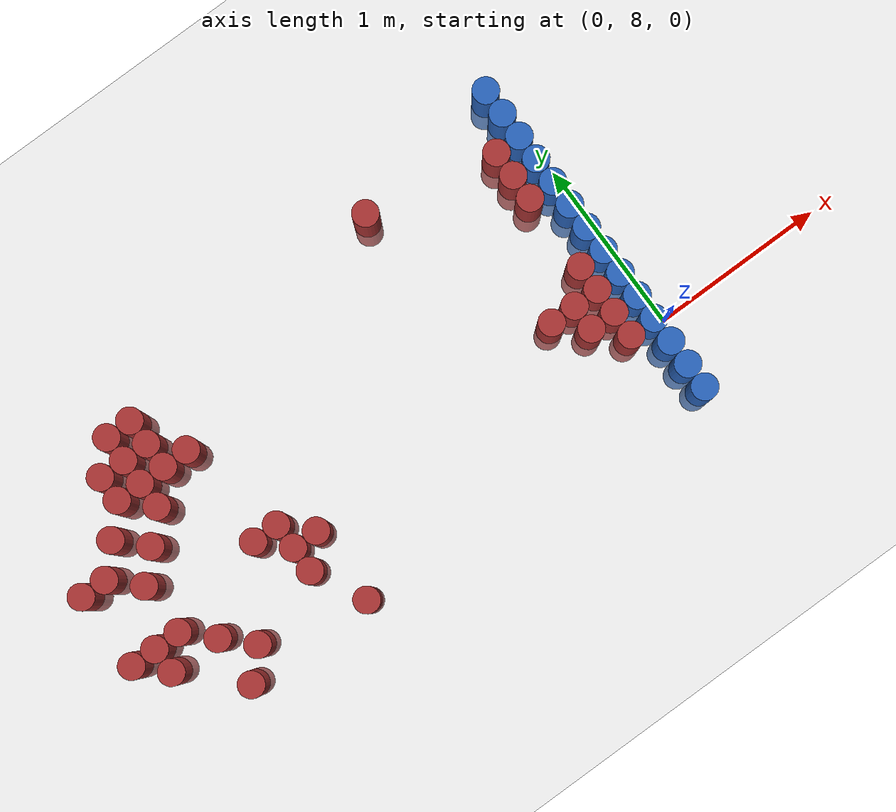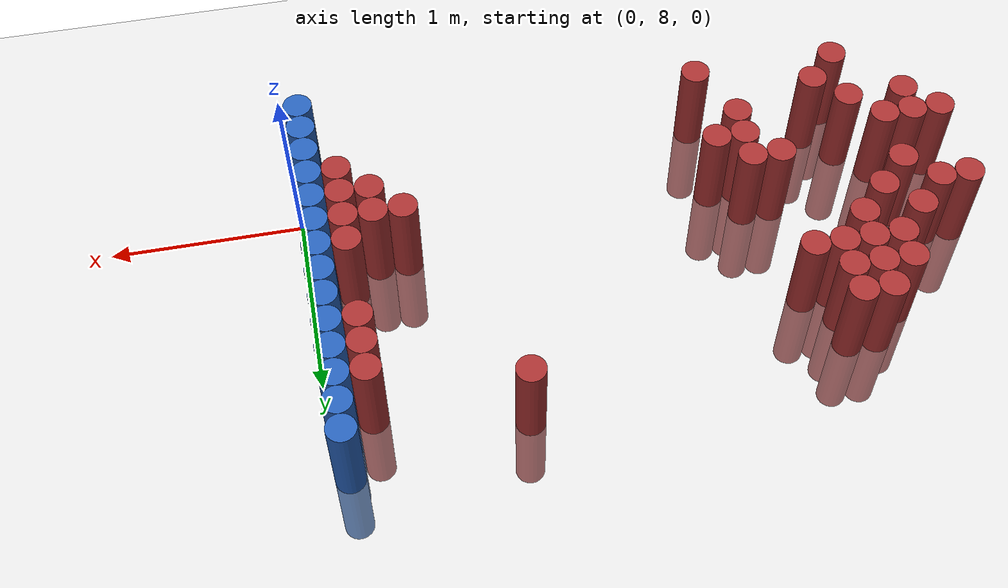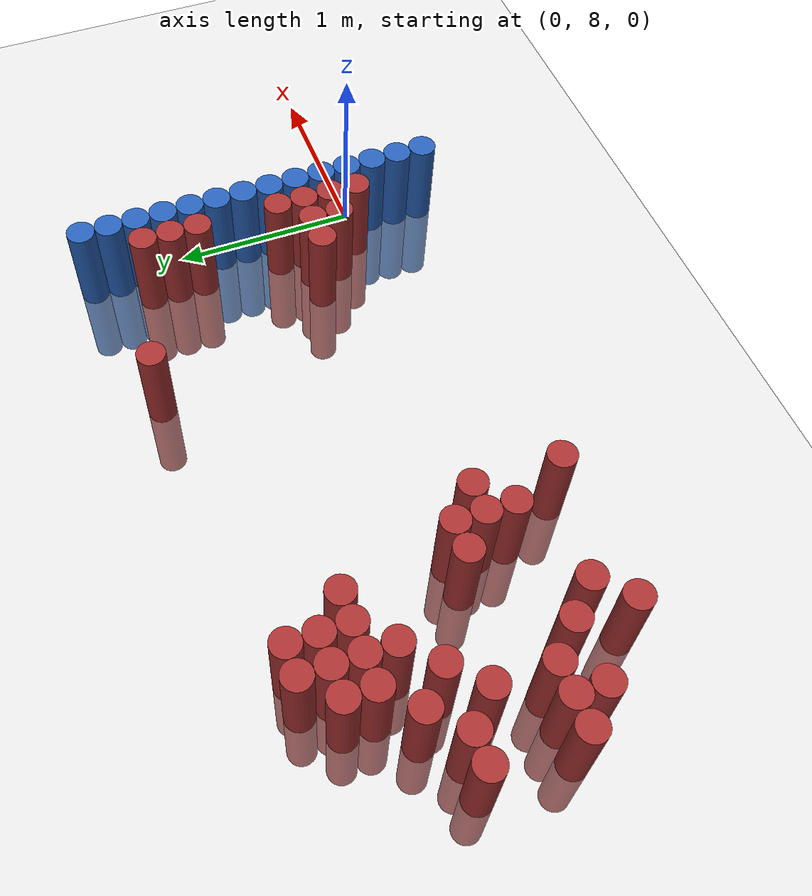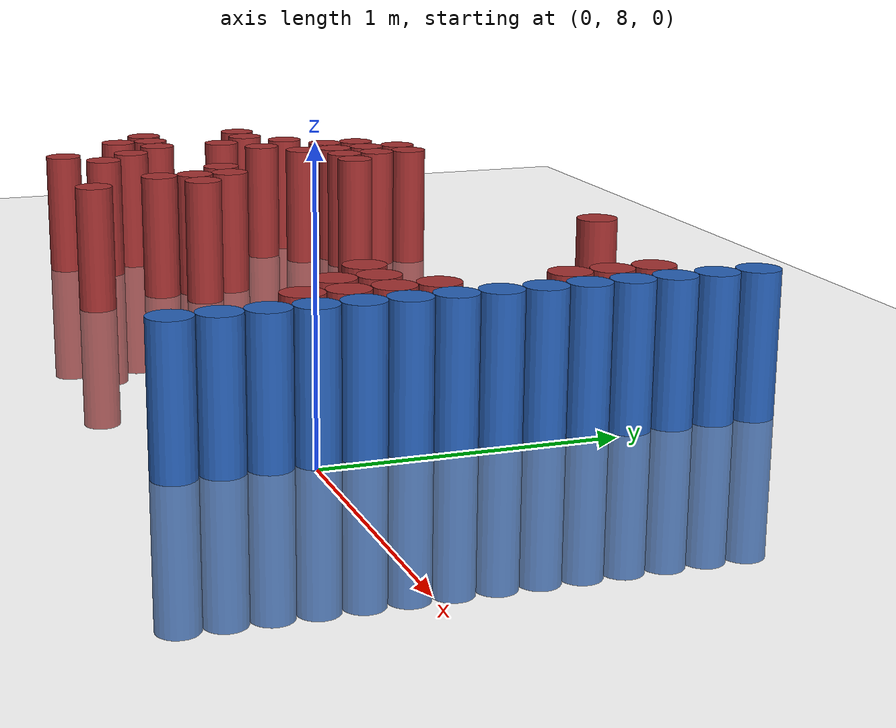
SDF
<sdf version="1.6">
 <world name="default">
  <model name="ground_plane">
   <static>1</static>
   <link name="link">
    <collision name="collision">
     <geometry><plane><normal>0 0 1</normal><size>100 100</size></plane></geometry>
     <surface><friction><ode><mu>100</mu><mu2>50</mu2></ode></friction></surface>
    </collision>
    <visual name="visual">
     <cast_shadows>0</cast_shadows>
     <geometry><plane><normal>0 0 1</normal><size>100 100</size></plane></geometry>
     <material>
      <script><uri>file://media/materials/scripts/gazebo.material</uri><name>Gazebo/Grey</name></script>
     </material>
    </visual>
   </link>
  </model>
  <model name="unit_cylinder_154">
   <static>1</static>
   <pose>-3.375000 8.175000 0.000000 0.000000 0.000000 0.000000</pose>
   <link name="link">
    <inertial>
     <mass>1</mass>
     <inertia><ixx>0.145833</ixx><ixy>0</ixy><ixz>0</ixz><iyy>0.145833</iyy><iyz>0</iyz><izz>0.125</izz></inertia>
    </inertial>
    <collision name="collision">
     <geometry><cylinder><radius>0.075000</radius><length>1</length></cylinder></geometry>
    </collision>
    <visual name="visual">
     <geometry><cylinder><radius>0.075000</radius><length>1</length></cylinder></geometry>
     <material>
      <ambient>0.648000 0.192000 0.192000 1</ambient>
      <diffuse>0.648000 0.192000 0.192000 1</diffuse>
     </material>
     <material>
      <script><name>Gazebo/Grey</name><uri>file://media/materials/scripts/gazebo.material</uri></script>
     </material>
    </visual>
   </link>
  </model>
  <model name="unit_cylinder_155">
   <static>1</static>
   <pose>-3.375000 8.625000 0.000000 0.000000 0.000000 0.000000</pose>
   <link name="link">
    <inertial>
     <mass>1</mass>
     <inertia><ixx>0.145833</ixx><ixy>0</ixy><ixz>0</ixz><iyy>0.145833</iyy><iyz>0</iyz><izz>0.125</izz></inertia>
    </inertial>
    <collision name="collision">
     <geometry><cylinder><radius>0.075000</radius><length>1</length></cylinder></geometry>
    </collision>
    <visual name="visual">
     <geometry><cylinder><radius>0.075000</radius><length>1</length></cylinder></geometry>
     <material>
      <ambient>0.648000 0.192000 0.192000 1</ambient>
      <diffuse>0.648000 0.192000 0.192000 1</diffuse>
     </material>
     <material>
      <script><name>Gazebo/Grey</name><uri>file://media/materials/scripts/gazebo.material</uri></script>
     </material>
    </visual>
   </link>
  </model>
  <model name="unit_cylinder_158">
   <static>1</static>
   <pose>-3.225000 8.025000 0.000000 0.000000 0.000000 0.000000</pose>
   <link name="link">
    <inertial>
     <mass>1</mass>
     <inertia><ixx>0.145833</ixx><ixy>0</ixy><ixz>0</ixz><iyy>0.145833</iyy><iyz>0</iyz><izz>0.125</izz></inertia>
    </inertial>
    <collision name="collision">
     <geometry><cylinder><radius>0.075000</radius><length>1</length></cylinder></geometry>
    </collision>
    <visual name="visual">
     <geometry><cylinder><radius>0.075000</radius><length>1</length></cylinder></geometry>
     <material>
      <ambient>0.648000 0.192000 0.192000 1</ambient>
      <diffuse>0.648000 0.192000 0.192000 1</diffuse>
     </material>
     <material>
      <script><name>Gazebo/Grey</name><uri>file://media/materials/scripts/gazebo.material</uri></script>
     </material>
    </visual>
   </link>
  </model>
  <model name="unit_cylinder_159">
   <static>1</static>
   <pose>-3.225000 8.175000 0.000000 0.000000 0.000000 0.000000</pose>
   <link name="link">
    <inertial>
     <mass>1</mass>
     <inertia><ixx>0.145833</ixx><ixy>0</ixy><ixz>0</ixz><iyy>0.145833</iyy><iyz>0</iyz><izz>0.125</izz></inertia>
    </inertial>
    <collision name="collision">
     <geometry><cylinder><radius>0.075000</radius><length>1</length></cylinder></geometry>
    </collision>
    <visual name="visual">
     <geometry><cylinder><radius>0.075000</radius><length>1</length></cylinder></geometry>
     <material>
      <ambient>0.648000 0.192000 0.192000 1</ambient>
      <diffuse>0.648000 0.192000 0.192000 1</diffuse>
     </material>
     <material>
      <script><name>Gazebo/Grey</name><uri>file://media/materials/scripts/gazebo.material</uri></script>
     </material>
    </visual>
   </link>
  </model>
  <model name="unit_cylinder_160">
   <static>1</static>
   <pose>-3.225000 8.625000 0.000000 0.000000 0.000000 0.000000</pose>
   <link name="link">
    <inertial>
     <mass>1</mass>
     <inertia><ixx>0.145833</ixx><ixy>0</ixy><ixz>0</ixz><iyy>0.145833</iyy><iyz>0</iyz><izz>0.125</izz></inertia>
    </inertial>
    <collision name="collision">
     <geometry><cylinder><radius>0.075000</radius><length>1</length></cylinder></geometry>
    </collision>
    <visual name="visual">
     <geometry><cylinder><radius>0.075000</radius><length>1</length></cylinder></geometry>
     <material>
      <ambient>0.648000 0.192000 0.192000 1</ambient>
      <diffuse>0.648000 0.192000 0.192000 1</diffuse>
     </material>
     <material>
      <script><name>Gazebo/Grey</name><uri>file://media/materials/scripts/gazebo.material</uri></script>
     </material>
    </visual>
   </link>
  </model>
  <model name="unit_cylinder_163">
   <static>1</static>
   <pose>-3.075000 8.175000 0.000000 0.000000 0.000000 0.000000</pose>
   <link name="link">
    <inertial>
     <mass>1</mass>
     <inertia><ixx>0.145833</ixx><ixy>0</ixy><ixz>0</ixz><iyy>0.145833</iyy><iyz>0</iyz><izz>0.125</izz></inertia>
    </inertial>
    <collision name="collision">
     <geometry><cylinder><radius>0.075000</radius><length>1</length></cylinder></geometry>
    </collision>
    <visual name="visual">
     <geometry><cylinder><radius>0.075000</radius><length>1</length></cylinder></geometry>
     <material>
      <ambient>0.648000 0.192000 0.192000 1</ambient>
      <diffuse>0.648000 0.192000 0.192000 1</diffuse>
     </material>
     <material>
      <script><name>Gazebo/Grey</name><uri>file://media/materials/scripts/gazebo.material</uri></script>
     </material>
    </visual>
   </link>
  </model>
  <model name="unit_cylinder_164">
   <static>1</static>
   <pose>-3.075000 8.475000 0.000000 0.000000 0.000000 0.000000</pose>
   <link name="link">
    <inertial>
     <mass>1</mass>
     <inertia><ixx>0.145833</ixx><ixy>0</ixy><ixz>0</ixz><iyy>0.145833</iyy><iyz>0</iyz><izz>0.125</izz></inertia>
    </inertial>
    <collision name="collision">
     <geometry><cylinder><radius>0.075000</radius><length>1</length></cylinder></geometry>
    </collision>
    <visual name="visual">
     <geometry><cylinder><radius>0.075000</radius><length>1</length></cylinder></geometry>
     <material>
      <ambient>0.648000 0.192000 0.192000 1</ambient>
      <diffuse>0.648000 0.192000 0.192000 1</diffuse>
     </material>
     <material>
      <script><name>Gazebo/Grey</name><uri>file://media/materials/scripts/gazebo.material</uri></script>
     </material>
    </visual>
   </link>
  </model>
  <model name="unit_cylinder_165">
   <static>1</static>
   <pose>-3.075000 8.775000 0.000000 0.000000 0.000000 0.000000</pose>
   <link name="link">
    <inertial>
     <mass>1</mass>
     <inertia><ixx>0.145833</ixx><ixy>0</ixy><ixz>0</ixz><iyy>0.145833</iyy><iyz>0</iyz><izz>0.125</izz></inertia>
    </inertial>
    <collision name="collision">
     <geometry><cylinder><radius>0.075000</radius><length>1</length></cylinder></geometry>
    </collision>
    <visual name="visual">
     <geometry><cylinder><radius>0.075000</radius><length>1</length></cylinder></geometry>
     <material>
      <ambient>0.648000 0.192000 0.192000 1</ambient>
      <diffuse>0.648000 0.192000 0.192000 1</diffuse>
     </material>
     <material>
      <script><name>Gazebo/Grey</name><uri>file://media/materials/scripts/gazebo.material</uri></script>
     </material>
    </visual>
   </link>
  </model>
  <model name="unit_cylinder_166">
   <static>1</static>
   <pose>-2.925000 7.725000 0.000000 0.000000 0.000000 0.000000</pose>
   <link name="link">
    <inertial>
     <mass>1</mass>
     <inertia><ixx>0.145833</ixx><ixy>0</ixy><ixz>0</ixz><iyy>0.145833</iyy><iyz>0</iyz><izz>0.125</izz></inertia>
    </inertial>
    <collision name="collision">
     <geometry><cylinder><radius>0.075000</radius><length>1</length></cylinder></geometry>
    </collision>
    <visual name="visual">
     <geometry><cylinder><radius>0.075000</radius><length>1</length></cylinder></geometry>
     <material>
      <ambient>0.648000 0.192000 0.192000 1</ambient>
      <diffuse>0.648000 0.192000 0.192000 1</diffuse>
     </material>
     <material>
      <script><name>Gazebo/Grey</name><uri>file://media/materials/scripts/gazebo.material</uri></script>
     </material>
    </visual>
   </link>
  </model>
  <model name="unit_cylinder_167">
   <static>1</static>
   <pose>-2.925000 8.025000 0.000000 0.000000 0.000000 0.000000</pose>
   <link name="link">
    <inertial>
     <mass>1</mass>
     <inertia><ixx>0.145833</ixx><ixy>0</ixy><ixz>0</ixz><iyy>0.145833</iyy><iyz>0</iyz><izz>0.125</izz></inertia>
    </inertial>
    <collision name="collision">
     <geometry><cylinder><radius>0.075000</radius><length>1</length></cylinder></geometry>
    </collision>
    <visual name="visual">
     <geometry><cylinder><radius>0.075000</radius><length>1</length></cylinder></geometry>
     <material>
      <ambient>0.648000 0.192000 0.192000 1</ambient>
      <diffuse>0.648000 0.192000 0.192000 1</diffuse>
     </material>
     <material>
      <script><name>Gazebo/Grey</name><uri>file://media/materials/scripts/gazebo.material</uri></script>
     </material>
    </visual>
   </link>
  </model>
  <model name="unit_cylinder_168">
   <static>1</static>
   <pose>-2.925000 8.625000 0.000000 0.000000 0.000000 0.000000</pose>
   <link name="link">
    <inertial>
     <mass>1</mass>
     <inertia><ixx>0.145833</ixx><ixy>0</ixy><ixz>0</ixz><iyy>0.145833</iyy><iyz>0</iyz><izz>0.125</izz></inertia>
    </inertial>
    <collision name="collision">
     <geometry><cylinder><radius>0.075000</radius><length>1</length></cylinder></geometry>
    </collision>
    <visual name="visual">
     <geometry><cylinder><radius>0.075000</radius><length>1</length></cylinder></geometry>
     <material>
      <ambient>0.648000 0.192000 0.192000 1</ambient>
      <diffuse>0.648000 0.192000 0.192000 1</diffuse>
     </material>
     <material>
      <script><name>Gazebo/Grey</name><uri>file://media/materials/scripts/gazebo.material</uri></script>
     </material>
    </visual>
   </link>
  </model>
  <model name="unit_cylinder_169">
   <static>1</static>
   <pose>-2.925000 8.925000 0.000000 0.000000 0.000000 0.000000</pose>
   <link name="link">
    <inertial>
     <mass>1</mass>
     <inertia><ixx>0.145833</ixx><ixy>0</ixy><ixz>0</ixz><iyy>0.145833</iyy><iyz>0</iyz><izz>0.125</izz></inertia>
    </inertial>
    <collision name="collision">
     <geometry><cylinder><radius>0.075000</radius><length>1</length></cylinder></geometry>
    </collision>
    <visual name="visual">
     <geometry><cylinder><radius>0.075000</radius><length>1</length></cylinder></geometry>
     <material>
      <ambient>0.648000 0.192000 0.192000 1</ambient>
      <diffuse>0.648000 0.192000 0.192000 1</diffuse>
     </material>
     <material>
      <script><name>Gazebo/Grey</name><uri>file://media/materials/scripts/gazebo.material</uri></script>
     </material>
    </visual>
   </link>
  </model>
  <model name="unit_cylinder_170">
   <static>1</static>
   <pose>-2.925000 9.075000 0.000000 0.000000 0.000000 0.000000</pose>
   <link name="link">
    <inertial>
     <mass>1</mass>
     <inertia><ixx>0.145833</ixx><ixy>0</ixy><ixz>0</ixz><iyy>0.145833</iyy><iyz>0</iyz><izz>0.125</izz></inertia>
    </inertial>
    <collision name="collision">
     <geometry><cylinder><radius>0.075000</radius><length>1</length></cylinder></geometry>
    </collision>
    <visual name="visual">
     <geometry><cylinder><radius>0.075000</radius><length>1</length></cylinder></geometry>
     <material>
      <ambient>0.648000 0.192000 0.192000 1</ambient>
      <diffuse>0.648000 0.192000 0.192000 1</diffuse>
     </material>
     <material>
      <script><name>Gazebo/Grey</name><uri>file://media/materials/scripts/gazebo.material</uri></script>
     </material>
    </visual>
   </link>
  </model>
  <model name="unit_cylinder_171">
   <static>1</static>
   <pose>-2.775000 7.875000 0.000000 0.000000 0.000000 0.000000</pose>
   <link name="link">
    <inertial>
     <mass>1</mass>
     <inertia><ixx>0.145833</ixx><ixy>0</ixy><ixz>0</ixz><iyy>0.145833</iyy><iyz>0</iyz><izz>0.125</izz></inertia>
    </inertial>
    <collision name="collision">
     <geometry><cylinder><radius>0.075000</radius><length>1</length></cylinder></geometry>
    </collision>
    <visual name="visual">
     <geometry><cylinder><radius>0.075000</radius><length>1</length></cylinder></geometry>
     <material>
      <ambient>0.648000 0.192000 0.192000 1</ambient>
      <diffuse>0.648000 0.192000 0.192000 1</diffuse>
     </material>
     <material>
      <script><name>Gazebo/Grey</name><uri>file://media/materials/scripts/gazebo.material</uri></script>
     </material>
    </visual>
   </link>
  </model>
  <model name="unit_cylinder_172">
   <static>1</static>
   <pose>-2.775000 8.775000 0.000000 0.000000 0.000000 0.000000</pose>
   <link name="link">
    <inertial>
     <mass>1</mass>
     <inertia><ixx>0.145833</ixx><ixy>0</ixy><ixz>0</ixz><iyy>0.145833</iyy><iyz>0</iyz><izz>0.125</izz></inertia>
    </inertial>
    <collision name="collision">
     <geometry><cylinder><radius>0.075000</radius><length>1</length></cylinder></geometry>
    </collision>
    <visual name="visual">
     <geometry><cylinder><radius>0.075000</radius><length>1</length></cylinder></geometry>
     <material>
      <ambient>0.648000 0.192000 0.192000 1</ambient>
      <diffuse>0.648000 0.192000 0.192000 1</diffuse>
     </material>
     <material>
      <script><name>Gazebo/Grey</name><uri>file://media/materials/scripts/gazebo.material</uri></script>
     </material>
    </visual>
   </link>
  </model>
  <model name="unit_cylinder_173">
   <static>1</static>
   <pose>-2.775000 8.925000 0.000000 0.000000 0.000000 0.000000</pose>
   <link name="link">
    <inertial>
     <mass>1</mass>
     <inertia><ixx>0.145833</ixx><ixy>0</ixy><ixz>0</ixz><iyy>0.145833</iyy><iyz>0</iyz><izz>0.125</izz></inertia>
    </inertial>
    <collision name="collision">
     <geometry><cylinder><radius>0.075000</radius><length>1</length></cylinder></geometry>
    </collision>
    <visual name="visual">
     <geometry><cylinder><radius>0.075000</radius><length>1</length></cylinder></geometry>
     <material>
      <ambient>0.648000 0.192000 0.192000 1</ambient>
      <diffuse>0.648000 0.192000 0.192000 1</diffuse>
     </material>
     <material>
      <script><name>Gazebo/Grey</name><uri>file://media/materials/scripts/gazebo.material</uri></script>
     </material>
    </visual>
   </link>
  </model>
  <model name="unit_cylinder_174">
   <static>1</static>
   <pose>-2.775000 9.075000 0.000000 0.000000 0.000000 0.000000</pose>
   <link name="link">
    <inertial>
     <mass>1</mass>
     <inertia><ixx>0.145833</ixx><ixy>0</ixy><ixz>0</ixz><iyy>0.145833</iyy><iyz>0</iyz><izz>0.125</izz></inertia>
    </inertial>
    <collision name="collision">
     <geometry><cylinder><radius>0.075000</radius><length>1</length></cylinder></geometry>
    </collision>
    <visual name="visual">
     <geometry><cylinder><radius>0.075000</radius><length>1</length></cylinder></geometry>
     <material>
      <ambient>0.648000 0.192000 0.192000 1</ambient>
      <diffuse>0.648000 0.192000 0.192000 1</diffuse>
     </material>
     <material>
      <script><name>Gazebo/Grey</name><uri>file://media/materials/scripts/gazebo.material</uri></script>
     </material>
    </visual>
   </link>
  </model>
  <model name="unit_cylinder_175">
   <static>1</static>
   <pose>-2.775000 9.225000 0.000000 0.000000 0.000000 0.000000</pose>
   <link name="link">
    <inertial>
     <mass>1</mass>
     <inertia><ixx>0.145833</ixx><ixy>0</ixy><ixz>0</ixz><iyy>0.145833</iyy><iyz>0</iyz><izz>0.125</izz></inertia>
    </inertial>
    <collision name="collision">
     <geometry><cylinder><radius>0.075000</radius><length>1</length></cylinder></geometry>
    </collision>
    <visual name="visual">
     <geometry><cylinder><radius>0.075000</radius><length>1</length></cylinder></geometry>
     <material>
      <ambient>0.648000 0.192000 0.192000 1</ambient>
      <diffuse>0.648000 0.192000 0.192000 1</diffuse>
     </material>
     <material>
      <script><name>Gazebo/Grey</name><uri>file://media/materials/scripts/gazebo.material</uri></script>
     </material>
    </visual>
   </link>
  </model>
  <model name="unit_cylinder_178">
   <static>1</static>
   <pose>-2.625000 8.925000 0.000000 0.000000 0.000000 0.000000</pose>
   <link name="link">
    <inertial>
     <mass>1</mass>
     <inertia><ixx>0.145833</ixx><ixy>0</ixy><ixz>0</ixz><iyy>0.145833</iyy><iyz>0</iyz><izz>0.125</izz></inertia>
    </inertial>
    <collision name="collision">
     <geometry><cylinder><radius>0.075000</radius><length>1</length></cylinder></geometry>
    </collision>
    <visual name="visual">
     <geometry><cylinder><radius>0.075000</radius><length>1</length></cylinder></geometry>
     <material>
      <ambient>0.648000 0.192000 0.192000 1</ambient>
      <diffuse>0.648000 0.192000 0.192000 1</diffuse>
     </material>
     <material>
      <script><name>Gazebo/Grey</name><uri>file://media/materials/scripts/gazebo.material</uri></script>
     </material>
    </visual>
   </link>
  </model>
  <model name="unit_cylinder_179">
   <static>1</static>
   <pose>-2.625000 9.075000 0.000000 0.000000 0.000000 0.000000</pose>
   <link name="link">
    <inertial>
     <mass>1</mass>
     <inertia><ixx>0.145833</ixx><ixy>0</ixy><ixz>0</ixz><iyy>0.145833</iyy><iyz>0</iyz><izz>0.125</izz></inertia>
    </inertial>
    <collision name="collision">
     <geometry><cylinder><radius>0.075000</radius><length>1</length></cylinder></geometry>
    </collision>
    <visual name="visual">
     <geometry><cylinder><radius>0.075000</radius><length>1</length></cylinder></geometry>
     <material>
      <ambient>0.648000 0.192000 0.192000 1</ambient>
      <diffuse>0.648000 0.192000 0.192000 1</diffuse>
     </material>
     <material>
      <script><name>Gazebo/Grey</name><uri>file://media/materials/scripts/gazebo.material</uri></script>
     </material>
    </visual>
   </link>
  </model>
  <model name="unit_cylinder_180">
   <static>1</static>
   <pose>-2.625000 9.225000 0.000000 0.000000 0.000000 0.000000</pose>
   <link name="link">
    <inertial>
     <mass>1</mass>
     <inertia><ixx>0.145833</ixx><ixy>0</ixy><ixz>0</ixz><iyy>0.145833</iyy><iyz>0</iyz><izz>0.125</izz></inertia>
    </inertial>
    <collision name="collision">
     <geometry><cylinder><radius>0.075000</radius><length>1</length></cylinder></geometry>
    </collision>
    <visual name="visual">
     <geometry><cylinder><radius>0.075000</radius><length>1</length></cylinder></geometry>
     <material>
      <ambient>0.648000 0.192000 0.192000 1</ambient>
      <diffuse>0.648000 0.192000 0.192000 1</diffuse>
     </material>
     <material>
      <script><name>Gazebo/Grey</name><uri>file://media/materials/scripts/gazebo.material</uri></script>
     </material>
    </visual>
   </link>
  </model>
  <model name="unit_cylinder_184">
   <static>1</static>
   <pose>-2.475000 8.325000 0.000000 0.000000 0.000000 0.000000</pose>
   <link name="link">
    <inertial>
     <mass>1</mass>
     <inertia><ixx>0.145833</ixx><ixy>0</ixy><ixz>0</ixz><iyy>0.145833</iyy><iyz>0</iyz><izz>0.125</izz></inertia>
    </inertial>
    <collision name="collision">
     <geometry><cylinder><radius>0.075000</radius><length>1</length></cylinder></geometry>
    </collision>
    <visual name="visual">
     <geometry><cylinder><radius>0.075000</radius><length>1</length></cylinder></geometry>
     <material>
      <ambient>0.648000 0.192000 0.192000 1</ambient>
      <diffuse>0.648000 0.192000 0.192000 1</diffuse>
     </material>
     <material>
      <script><name>Gazebo/Grey</name><uri>file://media/materials/scripts/gazebo.material</uri></script>
     </material>
    </visual>
   </link>
  </model>
  <model name="unit_cylinder_185">
   <static>1</static>
   <pose>-2.475000 8.925000 0.000000 0.000000 0.000000 0.000000</pose>
   <link name="link">
    <inertial>
     <mass>1</mass>
     <inertia><ixx>0.145833</ixx><ixy>0</ixy><ixz>0</ixz><iyy>0.145833</iyy><iyz>0</iyz><izz>0.125</izz></inertia>
    </inertial>
    <collision name="collision">
     <geometry><cylinder><radius>0.075000</radius><length>1</length></cylinder></geometry>
    </collision>
    <visual name="visual">
     <geometry><cylinder><radius>0.075000</radius><length>1</length></cylinder></geometry>
     <material>
      <ambient>0.648000 0.192000 0.192000 1</ambient>
      <diffuse>0.648000 0.192000 0.192000 1</diffuse>
     </material>
     <material>
      <script><name>Gazebo/Grey</name><uri>file://media/materials/scripts/gazebo.material</uri></script>
     </material>
    </visual>
   </link>
  </model>
  <model name="unit_cylinder_191">
   <static>1</static>
   <pose>-2.325000 8.025000 0.000000 0.000000 0.000000 0.000000</pose>
   <link name="link">
    <inertial>
     <mass>1</mass>
     <inertia><ixx>0.145833</ixx><ixy>0</ixy><ixz>0</ixz><iyy>0.145833</iyy><iyz>0</iyz><izz>0.125</izz></inertia>
    </inertial>
    <collision name="collision">
     <geometry><cylinder><radius>0.075000</radius><length>1</length></cylinder></geometry>
    </collision>
    <visual name="visual">
     <geometry><cylinder><radius>0.075000</radius><length>1</length></cylinder></geometry>
     <material>
      <ambient>0.648000 0.192000 0.192000 1</ambient>
      <diffuse>0.648000 0.192000 0.192000 1</diffuse>
     </material>
     <material>
      <script><name>Gazebo/Grey</name><uri>file://media/materials/scripts/gazebo.material</uri></script>
     </material>
    </visual>
   </link>
  </model>
  <model name="unit_cylinder_192">
   <static>1</static>
   <pose>-2.325000 8.175000 0.000000 0.000000 0.000000 0.000000</pose>
   <link name="link">
    <inertial>
     <mass>1</mass>
     <inertia><ixx>0.145833</ixx><ixy>0</ixy><ixz>0</ixz><iyy>0.145833</iyy><iyz>0</iyz><izz>0.125</izz></inertia>
    </inertial>
    <collision name="collision">
     <geometry><cylinder><radius>0.075000</radius><length>1</length></cylinder></geometry>
    </collision>
    <visual name="visual">
     <geometry><cylinder><radius>0.075000</radius><length>1</length></cylinder></geometry>
     <material>
      <ambient>0.648000 0.192000 0.192000 1</ambient>
      <diffuse>0.648000 0.192000 0.192000 1</diffuse>
     </material>
     <material>
      <script><name>Gazebo/Grey</name><uri>file://media/materials/scripts/gazebo.material</uri></script>
     </material>
    </visual>
   </link>
  </model>
  <model name="unit_cylinder_193">
   <static>1</static>
   <pose>-2.325000 8.325000 0.000000 0.000000 0.000000 0.000000</pose>
   <link name="link">
    <inertial>
     <mass>1</mass>
     <inertia><ixx>0.145833</ixx><ixy>0</ixy><ixz>0</ixz><iyy>0.145833</iyy><iyz>0</iyz><izz>0.125</izz></inertia>
    </inertial>
    <collision name="collision">
     <geometry><cylinder><radius>0.075000</radius><length>1</length></cylinder></geometry>
    </collision>
    <visual name="visual">
     <geometry><cylinder><radius>0.075000</radius><length>1</length></cylinder></geometry>
     <material>
      <ambient>0.648000 0.192000 0.192000 1</ambient>
      <diffuse>0.648000 0.192000 0.192000 1</diffuse>
     </material>
     <material>
      <script><name>Gazebo/Grey</name><uri>file://media/materials/scripts/gazebo.material</uri></script>
     </material>
    </visual>
   </link>
  </model>
  <model name="unit_cylinder_196">
   <static>1</static>
   <pose>-2.175000 7.725000 0.000000 0.000000 0.000000 0.000000</pose>
   <link name="link">
    <inertial>
     <mass>1</mass>
     <inertia><ixx>0.145833</ixx><ixy>0</ixy><ixz>0</ixz><iyy>0.145833</iyy><iyz>0</iyz><izz>0.125</izz></inertia>
    </inertial>
    <collision name="collision">
     <geometry><cylinder><radius>0.075000</radius><length>1</length></cylinder></geometry>
    </collision>
    <visual name="visual">
     <geometry><cylinder><radius>0.075000</radius><length>1</length></cylinder></geometry>
     <material>
      <ambient>0.648000 0.192000 0.192000 1</ambient>
      <diffuse>0.648000 0.192000 0.192000 1</diffuse>
     </material>
     <material>
      <script><name>Gazebo/Grey</name><uri>file://media/materials/scripts/gazebo.material</uri></script>
     </material>
    </visual>
   </link>
  </model>
  <model name="unit_cylinder_197">
   <static>1</static>
   <pose>-2.175000 8.175000 0.000000 0.000000 0.000000 0.000000</pose>
   <link name="link">
    <inertial>
     <mass>1</mass>
     <inertia><ixx>0.145833</ixx><ixy>0</ixy><ixz>0</ixz><iyy>0.145833</iyy><iyz>0</iyz><izz>0.125</izz></inertia>
    </inertial>
    <collision name="collision">
     <geometry><cylinder><radius>0.075000</radius><length>1</length></cylinder></geometry>
    </collision>
    <visual name="visual">
     <geometry><cylinder><radius>0.075000</radius><length>1</length></cylinder></geometry>
     <material>
      <ambient>0.648000 0.192000 0.192000 1</ambient>
      <diffuse>0.648000 0.192000 0.192000 1</diffuse>
     </material>
     <material>
      <script><name>Gazebo/Grey</name><uri>file://media/materials/scripts/gazebo.material</uri></script>
     </material>
    </visual>
   </link>
  </model>
  <model name="unit_cylinder_208">
   <static>1</static>
   <pose>-0.975000 9.375000 0.000000 0.000000 0.000000 0.000000</pose>
   <link name="link">
    <inertial>
     <mass>1</mass>
     <inertia><ixx>0.145833</ixx><ixy>0</ixy><ixz>0</ixz><iyy>0.145833</iyy><iyz>0</iyz><izz>0.125</izz></inertia>
    </inertial>
    <collision name="collision">
     <geometry><cylinder><radius>0.075000</radius><length>1</length></cylinder></geometry>
    </collision>
    <visual name="visual">
     <geometry><cylinder><radius>0.075000</radius><length>1</length></cylinder></geometry>
     <material>
      <ambient>0.648000 0.192000 0.192000 1</ambient>
      <diffuse>0.648000 0.192000 0.192000 1</diffuse>
     </material>
     <material>
      <script><name>Gazebo/Grey</name><uri>file://media/materials/scripts/gazebo.material</uri></script>
     </material>
    </visual>
   </link>
  </model>
  <model name="unit_cylinder_216">
   <static>1</static>
   <pose>-0.525000 8.325000 0.000000 0.000000 0.000000 0.000000</pose>
   <link name="link">
    <inertial>
     <mass>1</mass>
     <inertia><ixx>0.145833</ixx><ixy>0</ixy><ixz>0</ixz><iyy>0.145833</iyy><iyz>0</iyz><izz>0.125</izz></inertia>
    </inertial>
    <collision name="collision">
     <geometry><cylinder><radius>0.075000</radius><length>1</length></cylinder></geometry>
    </collision>
    <visual name="visual">
     <geometry><cylinder><radius>0.075000</radius><length>1</length></cylinder></geometry>
     <material>
      <ambient>0.648000 0.192000 0.192000 1</ambient>
      <diffuse>0.648000 0.192000 0.192000 1</diffuse>
     </material>
     <material>
      <script><name>Gazebo/Grey</name><uri>file://media/materials/scripts/gazebo.material</uri></script>
     </material>
    </visual>
   </link>
  </model>
  <model name="unit_cylinder_219">
   <static>1</static>
   <pose>-0.375000 8.175000 0.000000 0.000000 0.000000 0.000000</pose>
   <link name="link">
    <inertial>
     <mass>1</mass>
     <inertia><ixx>0.145833</ixx><ixy>0</ixy><ixz>0</ixz><iyy>0.145833</iyy><iyz>0</iyz><izz>0.125</izz></inertia>
    </inertial>
    <collision name="collision">
     <geometry><cylinder><radius>0.075000</radius><length>1</length></cylinder></geometry>
    </collision>
    <visual name="visual">
     <geometry><cylinder><radius>0.075000</radius><length>1</length></cylinder></geometry>
     <material>
      <ambient>0.648000 0.192000 0.192000 1</ambient>
      <diffuse>0.648000 0.192000 0.192000 1</diffuse>
     </material>
     <material>
      <script><name>Gazebo/Grey</name><uri>file://media/materials/scripts/gazebo.material</uri></script>
     </material>
    </visual>
   </link>
  </model>
  <model name="unit_cylinder_220">
   <static>1</static>
   <pose>-0.375000 8.325000 0.000000 0.000000 0.000000 0.000000</pose>
   <link name="link">
    <inertial>
     <mass>1</mass>
     <inertia><ixx>0.145833</ixx><ixy>0</ixy><ixz>0</ixz><iyy>0.145833</iyy><iyz>0</iyz><izz>0.125</izz></inertia>
    </inertial>
    <collision name="collision">
     <geometry><cylinder><radius>0.075000</radius><length>1</length></cylinder></geometry>
    </collision>
    <visual name="visual">
     <geometry><cylinder><radius>0.075000</radius><length>1</length></cylinder></geometry>
     <material>
      <ambient>0.648000 0.192000 0.192000 1</ambient>
      <diffuse>0.648000 0.192000 0.192000 1</diffuse>
     </material>
     <material>
      <script><name>Gazebo/Grey</name><uri>file://media/materials/scripts/gazebo.material</uri></script>
     </material>
    </visual>
   </link>
  </model>
  <model name="unit_cylinder_229">
   <static>1</static>
   <pose>-0.225000 8.025000 0.000000 0.000000 0.000000 0.000000</pose>
   <link name="link">
    <inertial>
     <mass>1</mass>
     <inertia><ixx>0.145833</ixx><ixy>0</ixy><ixz>0</ixz><iyy>0.145833</iyy><iyz>0</iyz><izz>0.125</izz></inertia>
    </inertial>
    <collision name="collision">
     <geometry><cylinder><radius>0.075000</radius><length>1</length></cylinder></geometry>
    </collision>
    <visual name="visual">
     <geometry><cylinder><radius>0.075000</radius><length>1</length></cylinder></geometry>
     <material>
      <ambient>0.648000 0.192000 0.192000 1</ambient>
      <diffuse>0.648000 0.192000 0.192000 1</diffuse>
     </material>
     <material>
      <script><name>Gazebo/Grey</name><uri>file://media/materials/scripts/gazebo.material</uri></script>
     </material>
    </visual>
   </link>
  </model>
  <model name="unit_cylinder_230">
   <static>1</static>
   <pose>-0.225000 8.175000 0.000000 0.000000 0.000000 0.000000</pose>
   <link name="link">
    <inertial>
     <mass>1</mass>
     <inertia><ixx>0.145833</ixx><ixy>0</ixy><ixz>0</ixz><iyy>0.145833</iyy><iyz>0</iyz><izz>0.125</izz></inertia>
    </inertial>
    <collision name="collision">
     <geometry><cylinder><radius>0.075000</radius><length>1</length></cylinder></geometry>
    </collision>
    <visual name="visual">
     <geometry><cylinder><radius>0.075000</radius><length>1</length></cylinder></geometry>
     <material>
      <ambient>0.648000 0.192000 0.192000 1</ambient>
      <diffuse>0.648000 0.192000 0.192000 1</diffuse>
     </material>
     <material>
      <script><name>Gazebo/Grey</name><uri>file://media/materials/scripts/gazebo.material</uri></script>
     </material>
    </visual>
   </link>
  </model>
  <model name="unit_cylinder_231">
   <static>1</static>
   <pose>-0.225000 8.325000 0.000000 0.000000 0.000000 0.000000</pose>
   <link name="link">
    <inertial>
     <mass>1</mass>
     <inertia><ixx>0.145833</ixx><ixy>0</ixy><ixz>0</ixz><iyy>0.145833</iyy><iyz>0</iyz><izz>0.125</izz></inertia>
    </inertial>
    <collision name="collision">
     <geometry><cylinder><radius>0.075000</radius><length>1</length></cylinder></geometry>
    </collision>
    <visual name="visual">
     <geometry><cylinder><radius>0.075000</radius><length>1</length></cylinder></geometry>
     <material>
      <ambient>0.648000 0.192000 0.192000 1</ambient>
      <diffuse>0.648000 0.192000 0.192000 1</diffuse>
     </material>
     <material>
      <script><name>Gazebo/Grey</name><uri>file://media/materials/scripts/gazebo.material</uri></script>
     </material>
    </visual>
   </link>
  </model>
  <model name="unit_cylinder_232">
   <static>1</static>
   <pose>-0.225000 8.475000 0.000000 0.000000 0.000000 0.000000</pose>
   <link name="link">
    <inertial>
     <mass>1</mass>
     <inertia><ixx>0.145833</ixx><ixy>0</ixy><ixz>0</ixz><iyy>0.145833</iyy><iyz>0</iyz><izz>0.125</izz></inertia>
    </inertial>
    <collision name="collision">
     <geometry><cylinder><radius>0.075000</radius><length>1</length></cylinder></geometry>
    </collision>
    <visual name="visual">
     <geometry><cylinder><radius>0.075000</radius><length>1</length></cylinder></geometry>
     <material>
      <ambient>0.648000 0.192000 0.192000 1</ambient>
      <diffuse>0.648000 0.192000 0.192000 1</diffuse>
     </material>
     <material>
      <script><name>Gazebo/Grey</name><uri>file://media/materials/scripts/gazebo.material</uri></script>
     </material>
    </visual>
   </link>
  </model>
  <model name="unit_cylinder_233">
   <static>1</static>
   <pose>-0.225000 8.925000 0.000000 0.000000 0.000000 0.000000</pose>
   <link name="link">
    <inertial>
     <mass>1</mass>
     <inertia><ixx>0.145833</ixx><ixy>0</ixy><ixz>0</ixz><iyy>0.145833</iyy><iyz>0</iyz><izz>0.125</izz></inertia>
    </inertial>
    <collision name="collision">
     <geometry><cylinder><radius>0.075000</radius><length>1</length></cylinder></geometry>
    </collision>
    <visual name="visual">
     <geometry><cylinder><radius>0.075000</radius><length>1</length></cylinder></geometry>
     <material>
      <ambient>0.648000 0.192000 0.192000 1</ambient>
      <diffuse>0.648000 0.192000 0.192000 1</diffuse>
     </material>
     <material>
      <script><name>Gazebo/Grey</name><uri>file://media/materials/scripts/gazebo.material</uri></script>
     </material>
    </visual>
   </link>
  </model>
  <model name="unit_cylinder_234">
   <static>1</static>
   <pose>-0.225000 9.075000 0.000000 0.000000 0.000000 0.000000</pose>
   <link name="link">
    <inertial>
     <mass>1</mass>
     <inertia><ixx>0.145833</ixx><ixy>0</ixy><ixz>0</ixz><iyy>0.145833</iyy><iyz>0</iyz><izz>0.125</izz></inertia>
    </inertial>
    <collision name="collision">
     <geometry><cylinder><radius>0.075000</radius><length>1</length></cylinder></geometry>
    </collision>
    <visual name="visual">
     <geometry><cylinder><radius>0.075000</radius><length>1</length></cylinder></geometry>
     <material>
      <ambient>0.648000 0.192000 0.192000 1</ambient>
      <diffuse>0.648000 0.192000 0.192000 1</diffuse>
     </material>
     <material>
      <script><name>Gazebo/Grey</name><uri>file://media/materials/scripts/gazebo.material</uri></script>
     </material>
    </visual>
   </link>
  </model>
  <model name="unit_cylinder_235">
   <static>1</static>
   <pose>-0.225000 9.225000 0.000000 0.000000 0.000000 0.000000</pose>
   <link name="link">
    <inertial>
     <mass>1</mass>
     <inertia><ixx>0.145833</ixx><ixy>0</ixy><ixz>0</ixz><iyy>0.145833</iyy><iyz>0</iyz><izz>0.125</izz></inertia>
    </inertial>
    <collision name="collision">
     <geometry><cylinder><radius>0.075000</radius><length>1</length></cylinder></geometry>
    </collision>
    <visual name="visual">
     <geometry><cylinder><radius>0.075000</radius><length>1</length></cylinder></geometry>
     <material>
      <ambient>0.648000 0.192000 0.192000 1</ambient>
      <diffuse>0.648000 0.192000 0.192000 1</diffuse>
     </material>
     <material>
      <script><name>Gazebo/Grey</name><uri>file://media/materials/scripts/gazebo.material</uri></script>
     </material>
    </visual>
   </link>
  </model>
  <model name="unit_cylinder_252">
   <static>1</static>
   <pose>-0.075000 7.575000 0.000000 0.000000 0.000000 0.000000</pose>
   <link name="link">
    <inertial>
     <mass>1</mass>
     <inertia><ixx>0.145833</ixx><ixy>0</ixy><ixz>0</ixz><iyy>0.145833</iyy><iyz>0</iyz><izz>0.125</izz></inertia>
    </inertial>
    <collision name="collision">
     <geometry><cylinder><radius>0.075000</radius><length>1</length></cylinder></geometry>
    </collision>
    <visual name="visual">
     <geometry><cylinder><radius>0.075000</radius><length>1</length></cylinder></geometry>
     <material>
      <ambient>0.152000 0.379000 0.720000 1</ambient>
      <diffuse>0.152000 0.379000 0.720000 1</diffuse>
     </material>
     <material>
      <script><name>Gazebo/Grey</name><uri>file://media/materials/scripts/gazebo.material</uri></script>
     </material>
    </visual>
   </link>
  </model>
  <model name="unit_cylinder_253">
   <static>1</static>
   <pose>-0.075000 7.725000 0.000000 0.000000 0.000000 0.000000</pose>
   <link name="link">
    <inertial>
     <mass>1</mass>
     <inertia><ixx>0.145833</ixx><ixy>0</ixy><ixz>0</ixz><iyy>0.145833</iyy><iyz>0</iyz><izz>0.125</izz></inertia>
    </inertial>
    <collision name="collision">
     <geometry><cylinder><radius>0.075000</radius><length>1</length></cylinder></geometry>
    </collision>
    <visual name="visual">
     <geometry><cylinder><radius>0.075000</radius><length>1</length></cylinder></geometry>
     <material>
      <ambient>0.152000 0.379000 0.720000 1</ambient>
      <diffuse>0.152000 0.379000 0.720000 1</diffuse>
     </material>
     <material>
      <script><name>Gazebo/Grey</name><uri>file://media/materials/scripts/gazebo.material</uri></script>
     </material>
    </visual>
   </link>
  </model>
  <model name="unit_cylinder_254">
   <static>1</static>
   <pose>-0.075000 7.875000 0.000000 0.000000 0.000000 0.000000</pose>
   <link name="link">
    <inertial>
     <mass>1</mass>
     <inertia><ixx>0.145833</ixx><ixy>0</ixy><ixz>0</ixz><iyy>0.145833</iyy><iyz>0</iyz><izz>0.125</izz></inertia>
    </inertial>
    <collision name="collision">
     <geometry><cylinder><radius>0.075000</radius><length>1</length></cylinder></geometry>
    </collision>
    <visual name="visual">
     <geometry><cylinder><radius>0.075000</radius><length>1</length></cylinder></geometry>
     <material>
      <ambient>0.152000 0.379000 0.720000 1</ambient>
      <diffuse>0.152000 0.379000 0.720000 1</diffuse>
     </material>
     <material>
      <script><name>Gazebo/Grey</name><uri>file://media/materials/scripts/gazebo.material</uri></script>
     </material>
    </visual>
   </link>
  </model>
  <model name="unit_cylinder_255">
   <static>1</static>
   <pose>-0.075000 8.025000 0.000000 0.000000 0.000000 0.000000</pose>
   <link name="link">
    <inertial>
     <mass>1</mass>
     <inertia><ixx>0.145833</ixx><ixy>0</ixy><ixz>0</ixz><iyy>0.145833</iyy><iyz>0</iyz><izz>0.125</izz></inertia>
    </inertial>
    <collision name="collision">
     <geometry><cylinder><radius>0.075000</radius><length>1</length></cylinder></geometry>
    </collision>
    <visual name="visual">
     <geometry><cylinder><radius>0.075000</radius><length>1</length></cylinder></geometry>
     <material>
      <ambient>0.152000 0.379000 0.720000 1</ambient>
      <diffuse>0.152000 0.379000 0.720000 1</diffuse>
     </material>
     <material>
      <script><name>Gazebo/Grey</name><uri>file://media/materials/scripts/gazebo.material</uri></script>
     </material>
    </visual>
   </link>
  </model>
  <model name="unit_cylinder_256">
   <static>1</static>
   <pose>-0.075000 8.175000 0.000000 0.000000 0.000000 0.000000</pose>
   <link name="link">
    <inertial>
     <mass>1</mass>
     <inertia><ixx>0.145833</ixx><ixy>0</ixy><ixz>0</ixz><iyy>0.145833</iyy><iyz>0</iyz><izz>0.125</izz></inertia>
    </inertial>
    <collision name="collision">
     <geometry><cylinder><radius>0.075000</radius><length>1</length></cylinder></geometry>
    </collision>
    <visual name="visual">
     <geometry><cylinder><radius>0.075000</radius><length>1</length></cylinder></geometry>
     <material>
      <ambient>0.152000 0.379000 0.720000 1</ambient>
      <diffuse>0.152000 0.379000 0.720000 1</diffuse>
     </material>
     <material>
      <script><name>Gazebo/Grey</name><uri>file://media/materials/scripts/gazebo.material</uri></script>
     </material>
    </visual>
   </link>
  </model>
  <model name="unit_cylinder_257">
   <static>1</static>
   <pose>-0.075000 8.325000 0.000000 0.000000 0.000000 0.000000</pose>
   <link name="link">
    <inertial>
     <mass>1</mass>
     <inertia><ixx>0.145833</ixx><ixy>0</ixy><ixz>0</ixz><iyy>0.145833</iyy><iyz>0</iyz><izz>0.125</izz></inertia>
    </inertial>
    <collision name="collision">
     <geometry><cylinder><radius>0.075000</radius><length>1</length></cylinder></geometry>
    </collision>
    <visual name="visual">
     <geometry><cylinder><radius>0.075000</radius><length>1</length></cylinder></geometry>
     <material>
      <ambient>0.152000 0.379000 0.720000 1</ambient>
      <diffuse>0.152000 0.379000 0.720000 1</diffuse>
     </material>
     <material>
      <script><name>Gazebo/Grey</name><uri>file://media/materials/scripts/gazebo.material</uri></script>
     </material>
    </visual>
   </link>
  </model>
  <model name="unit_cylinder_258">
   <static>1</static>
   <pose>-0.075000 8.475000 0.000000 0.000000 0.000000 0.000000</pose>
   <link name="link">
    <inertial>
     <mass>1</mass>
     <inertia><ixx>0.145833</ixx><ixy>0</ixy><ixz>0</ixz><iyy>0.145833</iyy><iyz>0</iyz><izz>0.125</izz></inertia>
    </inertial>
    <collision name="collision">
     <geometry><cylinder><radius>0.075000</radius><length>1</length></cylinder></geometry>
    </collision>
    <visual name="visual">
     <geometry><cylinder><radius>0.075000</radius><length>1</length></cylinder></geometry>
     <material>
      <ambient>0.152000 0.379000 0.720000 1</ambient>
      <diffuse>0.152000 0.379000 0.720000 1</diffuse>
     </material>
     <material>
      <script><name>Gazebo/Grey</name><uri>file://media/materials/scripts/gazebo.material</uri></script>
     </material>
    </visual>
   </link>
  </model>
  <model name="unit_cylinder_259">
   <static>1</static>
   <pose>-0.075000 8.625000 0.000000 0.000000 0.000000 0.000000</pose>
   <link name="link">
    <inertial>
     <mass>1</mass>
     <inertia><ixx>0.145833</ixx><ixy>0</ixy><ixz>0</ixz><iyy>0.145833</iyy><iyz>0</iyz><izz>0.125</izz></inertia>
    </inertial>
    <collision name="collision">
     <geometry><cylinder><radius>0.075000</radius><length>1</length></cylinder></geometry>
    </collision>
    <visual name="visual">
     <geometry><cylinder><radius>0.075000</radius><length>1</length></cylinder></geometry>
     <material>
      <ambient>0.152000 0.379000 0.720000 1</ambient>
      <diffuse>0.152000 0.379000 0.720000 1</diffuse>
     </material>
     <material>
      <script><name>Gazebo/Grey</name><uri>file://media/materials/scripts/gazebo.material</uri></script>
     </material>
    </visual>
   </link>
  </model>
  <model name="unit_cylinder_260">
   <static>1</static>
   <pose>-0.075000 8.775000 0.000000 0.000000 0.000000 0.000000</pose>
   <link name="link">
    <inertial>
     <mass>1</mass>
     <inertia><ixx>0.145833</ixx><ixy>0</ixy><ixz>0</ixz><iyy>0.145833</iyy><iyz>0</iyz><izz>0.125</izz></inertia>
    </inertial>
    <collision name="collision">
     <geometry><cylinder><radius>0.075000</radius><length>1</length></cylinder></geometry>
    </collision>
    <visual name="visual">
     <geometry><cylinder><radius>0.075000</radius><length>1</length></cylinder></geometry>
     <material>
      <ambient>0.152000 0.379000 0.720000 1</ambient>
      <diffuse>0.152000 0.379000 0.720000 1</diffuse>
     </material>
     <material>
      <script><name>Gazebo/Grey</name><uri>file://media/materials/scripts/gazebo.material</uri></script>
     </material>
    </visual>
   </link>
  </model>
  <model name="unit_cylinder_261">
   <static>1</static>
   <pose>-0.075000 8.925000 0.000000 0.000000 0.000000 0.000000</pose>
   <link name="link">
    <inertial>
     <mass>1</mass>
     <inertia><ixx>0.145833</ixx><ixy>0</ixy><ixz>0</ixz><iyy>0.145833</iyy><iyz>0</iyz><izz>0.125</izz></inertia>
    </inertial>
    <collision name="collision">
     <geometry><cylinder><radius>0.075000</radius><length>1</length></cylinder></geometry>
    </collision>
    <visual name="visual">
     <geometry><cylinder><radius>0.075000</radius><length>1</length></cylinder></geometry>
     <material>
      <ambient>0.152000 0.379000 0.720000 1</ambient>
      <diffuse>0.152000 0.379000 0.720000 1</diffuse>
     </material>
     <material>
      <script><name>Gazebo/Grey</name><uri>file://media/materials/scripts/gazebo.material</uri></script>
     </material>
    </visual>
   </link>
  </model>
  <model name="unit_cylinder_262">
   <static>1</static>
   <pose>-0.075000 9.075000 0.000000 0.000000 0.000000 0.000000</pose>
   <link name="link">
    <inertial>
     <mass>1</mass>
     <inertia><ixx>0.145833</ixx><ixy>0</ixy><ixz>0</ixz><iyy>0.145833</iyy><iyz>0</iyz><izz>0.125</izz></inertia>
    </inertial>
    <collision name="collision">
     <geometry><cylinder><radius>0.075000</radius><length>1</length></cylinder></geometry>
    </collision>
    <visual name="visual">
     <geometry><cylinder><radius>0.075000</radius><length>1</length></cylinder></geometry>
     <material>
      <ambient>0.152000 0.379000 0.720000 1</ambient>
      <diffuse>0.152000 0.379000 0.720000 1</diffuse>
     </material>
     <material>
      <script><name>Gazebo/Grey</name><uri>file://media/materials/scripts/gazebo.material</uri></script>
     </material>
    </visual>
   </link>
  </model>
  <model name="unit_cylinder_263">
   <static>1</static>
   <pose>-0.075000 9.225000 0.000000 0.000000 0.000000 0.000000</pose>
   <link name="link">
    <inertial>
     <mass>1</mass>
     <inertia><ixx>0.145833</ixx><ixy>0</ixy><ixz>0</ixz><iyy>0.145833</iyy><iyz>0</iyz><izz>0.125</izz></inertia>
    </inertial>
    <collision name="collision">
     <geometry><cylinder><radius>0.075000</radius><length>1</length></cylinder></geometry>
    </collision>
    <visual name="visual">
     <geometry><cylinder><radius>0.075000</radius><length>1</length></cylinder></geometry>
     <material>
      <ambient>0.152000 0.379000 0.720000 1</ambient>
      <diffuse>0.152000 0.379000 0.720000 1</diffuse>
     </material>
     <material>
      <script><name>Gazebo/Grey</name><uri>file://media/materials/scripts/gazebo.material</uri></script>
     </material>
    </visual>
   </link>
  </model>
  <model name="unit_cylinder_264">
   <static>1</static>
   <pose>-0.075000 9.375000 0.000000 0.000000 0.000000 0.000000</pose>
   <link name="link">
    <inertial>
     <mass>1</mass>
     <inertia><ixx>0.145833</ixx><ixy>0</ixy><ixz>0</ixz><iyy>0.145833</iyy><iyz>0</iyz><izz>0.125</izz></inertia>
    </inertial>
    <collision name="collision">
     <geometry><cylinder><radius>0.075000</radius><length>1</length></cylinder></geometry>
    </collision>
    <visual name="visual">
     <geometry><cylinder><radius>0.075000</radius><length>1</length></cylinder></geometry>
     <material>
      <ambient>0.152000 0.379000 0.720000 1</ambient>
      <diffuse>0.152000 0.379000 0.720000 1</diffuse>
     </material>
     <material>
      <script><name>Gazebo/Grey</name><uri>file://media/materials/scripts/gazebo.material</uri></script>
     </material>
    </visual>
   </link>
  </model>
  <model name="unit_cylinder_265">
   <static>1</static>
   <pose>-0.075000 9.525000 0.000000 0.000000 0.000000 0.000000</pose>
   <link name="link">
    <inertial>
     <mass>1</mass>
     <inertia><ixx>0.145833</ixx><ixy>0</ixy><ixz>0</ixz><iyy>0.145833</iyy><iyz>0</iyz><izz>0.125</izz></inertia>
    </inertial>
    <collision name="collision">
     <geometry><cylinder><radius>0.075000</radius><length>1</length></cylinder></geometry>
    </collision>
    <visual name="visual">
     <geometry><cylinder><radius>0.075000</radius><length>1</length></cylinder></geometry>
     <material>
      <ambient>0.152000 0.379000 0.720000 1</ambient>
      <diffuse>0.152000 0.379000 0.720000 1</diffuse>
     </material>
     <material>
      <script><name>Gazebo/Grey</name><uri>file://media/materials/scripts/gazebo.material</uri></script>
     </material>
    </visual>
   </link>
  </model>
 </world>
</sdf>
